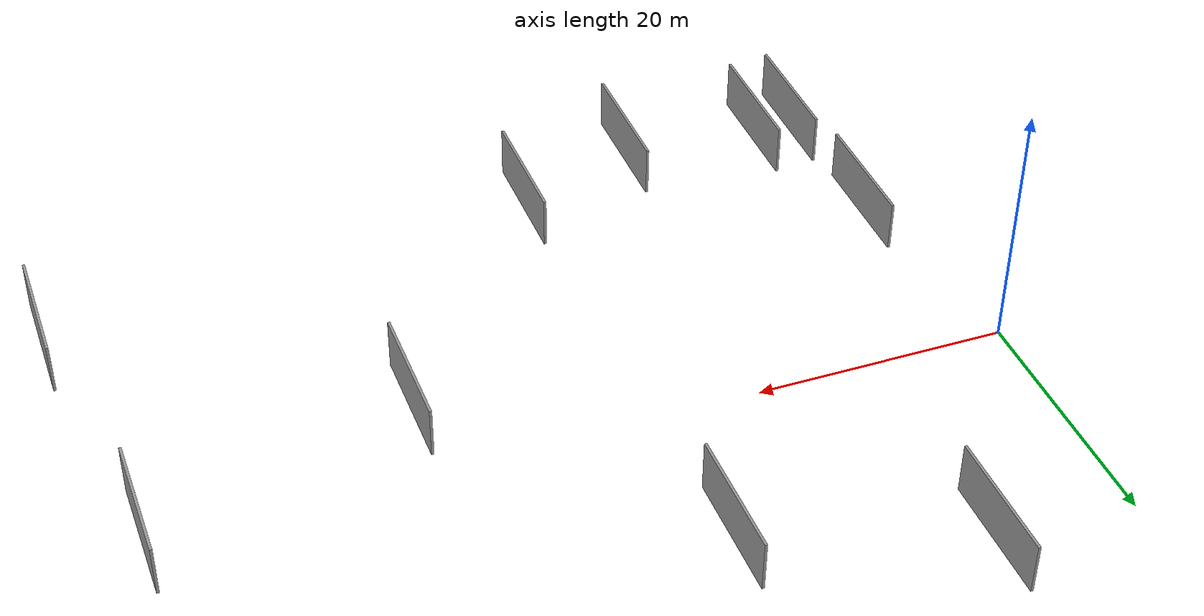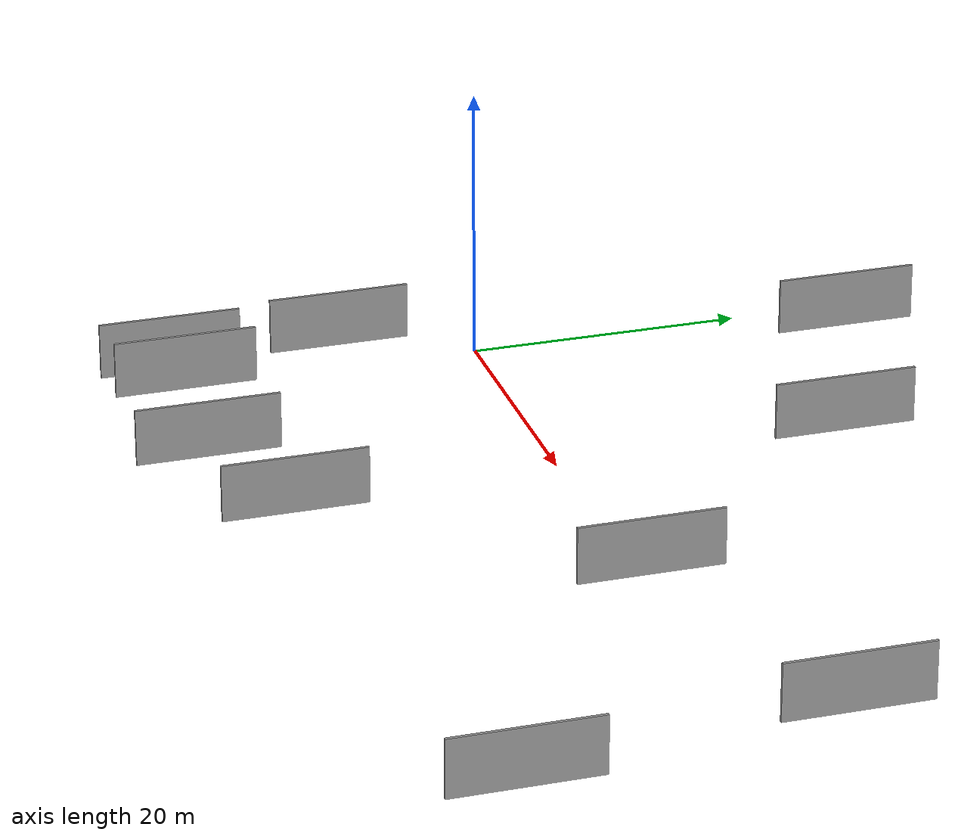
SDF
<sdf version="1.6">
 <world name="default">
  <scene>
   <sky><clouds><speed>12</speed></clouds></sky>
   <ambient>0.4 0.4 0.4 1</ambient>
   <background>0.7 0.7 0.7 1</background>
   <shadows>1</shadows>
  </scene>
  <gravity>0 0 -9.8066</gravity>
  <magnetic_field>6e-06 2.3e-05 -4.2e-05</magnetic_field>
  <physics default="0" name="default_physics" type="ode">
   <ode>
    <solver>
     <type>quick</type>
     <iters>10</iters>
     <sor>1.0</sor>
     <use_dynamic_moi_rescaling>0</use_dynamic_moi_rescaling>
    </solver>
    <constraints>
     <cfm>0</cfm>
     <erp>0.2</erp>
     <contact_max_correcting_vel>100</contact_max_correcting_vel>
     <contact_surface_layer>0.001</contact_surface_layer>
    </constraints>
   </ode>
   <max_step_size>0.004</max_step_size>
   <real_time_factor>1</real_time_factor>
   <real_time_update_rate>250</real_time_update_rate>
  </physics>
  <light name="sun" type="directional">
   <pose>0 0 10 0 0 0</pose>
   <diffuse>0.8 0.8 0.8 1</diffuse>
   <specular>0.2 0.2 0.2 1</specular>
   <attenuation>
    <range>1000</range>
    <constant>0.9</constant>
    <linear>0.01</linear>
    <quadratic>0.001</quadratic>
   </attenuation>
   <direction>-0.5 0.1 -0.9</direction>
  </light>
  <model name="grey_wall_1">
   <static>1</static>
   <pose>6.4364 -11.9198 5.0 0.000000 0.000000 1.570796</pose>
   <link name="link">
    <pose>0 0 2.00 0 0 0</pose>
    <collision name="collision"><geometry><box><size>10.00 0.2 4.00</size></box></geometry></collision>
    <visual name="visual">
     <cast_shadows>0</cast_shadows>
     <geometry><box><size>10.00 0.2 4.00</size></box></geometry>
     <material>
      <script>
       <uri>model://grey_wall/materials/scripts</uri>
       <uri>model://grey_wall/materials/textures</uri>
       <name>vrc/grey_wall</name>
      </script>
     </material>
    </visual>
   </link>
  </model>
  <model name="grey_wall_2">
   <static>1</static>
   <pose>13.7041 23.5473 5.0 0.000000 0.000000 1.570796</pose>
   <link name="link">
    <pose>0 0 2.00 0 0 0</pose>
    <collision name="collision"><geometry><box><size>10.00 0.2 4.00</size></box></geometry></collision>
    <visual name="visual">
     <cast_shadows>0</cast_shadows>
     <geometry><box><size>10.00 0.2 4.00</size></box></geometry>
     <material>
      <script>
       <uri>model://grey_wall/materials/scripts</uri>
       <uri>model://grey_wall/materials/textures</uri>
       <name>vrc/grey_wall</name>
      </script>
     </material>
    </visual>
   </link>
  </model>
  <model name="grey_wall_3">
   <static>1</static>
   <pose>10.4406 -23.9385 5.0 0.000000 0.000000 1.570796</pose>
   <link name="link">
    <pose>0 0 2.00 0 0 0</pose>
    <collision name="collision"><geometry><box><size>10.00 0.2 4.00</size></box></geometry></collision>
    <visual name="visual">
     <cast_shadows>0</cast_shadows>
     <geometry><box><size>10.00 0.2 4.00</size></box></geometry>
     <material>
      <script>
       <uri>model://grey_wall/materials/scripts</uri>
       <uri>model://grey_wall/materials/textures</uri>
       <name>vrc/grey_wall</name>
      </script>
     </material>
    </visual>
   </link>
  </model>
  <model name="grey_wall_4">
   <static>1</static>
   <pose>46.1925 -1.9463 5.0 0.000000 0.000000 1.570796</pose>
   <link name="link">
    <pose>0 0 2.00 0 0 0</pose>
    <collision name="collision"><geometry><box><size>10.00 0.2 4.00</size></box></geometry></collision>
    <visual name="visual">
     <cast_shadows>0</cast_shadows>
     <geometry><box><size>10.00 0.2 4.00</size></box></geometry>
     <material>
      <script>
       <uri>model://grey_wall/materials/scripts</uri>
       <uri>model://grey_wall/materials/textures</uri>
       <name>vrc/grey_wall</name>
      </script>
     </material>
    </visual>
   </link>
  </model>
  <model name="grey_wall_5">
   <static>1</static>
   <pose>29.8940 17.3772 5.0 0.000000 0.000000 1.570796</pose>
   <link name="link">
    <pose>0 0 2.00 0 0 0</pose>
    <collision name="collision"><geometry><box><size>10.00 0.2 4.00</size></box></geometry></collision>
    <visual name="visual">
     <cast_shadows>0</cast_shadows>
     <geometry><box><size>10.00 0.2 4.00</size></box></geometry>
     <material>
      <script>
       <uri>model://grey_wall/materials/scripts</uri>
       <uri>model://grey_wall/materials/textures</uri>
       <name>vrc/grey_wall</name>
      </script>
     </material>
    </visual>
   </link>
  </model>
  <model name="grey_wall_6">
   <static>1</static>
   <pose>7.0901 -24.2674 5.0 0.000000 0.000000 1.570796</pose>
   <link name="link">
    <pose>0 0 2.00 0 0 0</pose>
    <collision name="collision"><geometry><box><size>10.00 0.2 4.00</size></box></geometry></collision>
    <visual name="visual">
     <cast_shadows>0</cast_shadows>
     <geometry><box><size>10.00 0.2 4.00</size></box></geometry>
     <material>
      <script>
       <uri>model://grey_wall/materials/scripts</uri>
       <uri>model://grey_wall/materials/textures</uri>
       <name>vrc/grey_wall</name>
      </script>
     </material>
    </visual>
   </link>
  </model>
  <model name="grey_wall_7">
   <static>1</static>
   <pose>66.6565 4.3252 5.0 0.000000 0.000000 1.570796</pose>
   <link name="link">
    <pose>0 0 2.00 0 0 0</pose>
    <collision name="collision"><geometry><box><size>10.00 0.2 4.00</size></box></geometry></collision>
    <visual name="visual">
     <cast_shadows>0</cast_shadows>
     <geometry><box><size>10.00 0.2 4.00</size></box></geometry>
     <material>
      <script>
       <uri>model://grey_wall/materials/scripts</uri>
       <uri>model://grey_wall/materials/textures</uri>
       <name>vrc/grey_wall</name>
      </script>
     </material>
    </visual>
   </link>
  </model>
  <model name="grey_wall_8">
   <static>1</static>
   <pose>69.4795 -17.4418 5.0 0.000000 0.000000 1.570796</pose>
   <link name="link">
    <pose>0 0 2.00 0 0 0</pose>
    <collision name="collision"><geometry><box><size>10.00 0.2 4.00</size></box></geometry></collision>
    <visual name="visual">
     <cast_shadows>0</cast_shadows>
     <geometry><box><size>10.00 0.2 4.00</size></box></geometry>
     <material>
      <script>
       <uri>model://grey_wall/materials/scripts</uri>
       <uri>model://grey_wall/materials/textures</uri>
       <name>vrc/grey_wall</name>
      </script>
     </material>
    </visual>
   </link>
  </model>
  <model name="grey_wall_9">
   <static>1</static>
   <pose>31.0650 -21.4104 5.0 0.000000 0.000000 1.570796</pose>
   <link name="link">
    <pose>0 0 2.00 0 0 0</pose>
    <collision name="collision"><geometry><box><size>10.00 0.2 4.00</size></box></geometry></collision>
    <visual name="visual">
     <cast_shadows>0</cast_shadows>
     <geometry><box><size>10.00 0.2 4.00</size></box></geometry>
     <material>
      <script>
       <uri>model://grey_wall/materials/scripts</uri>
       <uri>model://grey_wall/materials/textures</uri>
       <name>vrc/grey_wall</name>
      </script>
     </material>
    </visual>
   </link>
  </model>
  <model name="grey_wall_10">
   <static>1</static>
   <pose>21.2900 -24.9188 5.0 0.000000 0.000000 1.570796</pose>
   <link name="link">
    <pose>0 0 2.00 0 0 0</pose>
    <collision name="collision"><geometry><box><size>10.00 0.2 4.00</size></box></geometry></collision>
    <visual name="visual">
     <cast_shadows>0</cast_shadows>
     <geometry><box><size>10.00 0.2 4.00</size></box></geometry>
     <material>
      <script>
       <uri>model://grey_wall/materials/scripts</uri>
       <uri>model://grey_wall/materials/textures</uri>
       <name>vrc/grey_wall</name>
      </script>
     </material>
    </visual>
   </link>
  </model>
 </world>
</sdf>
